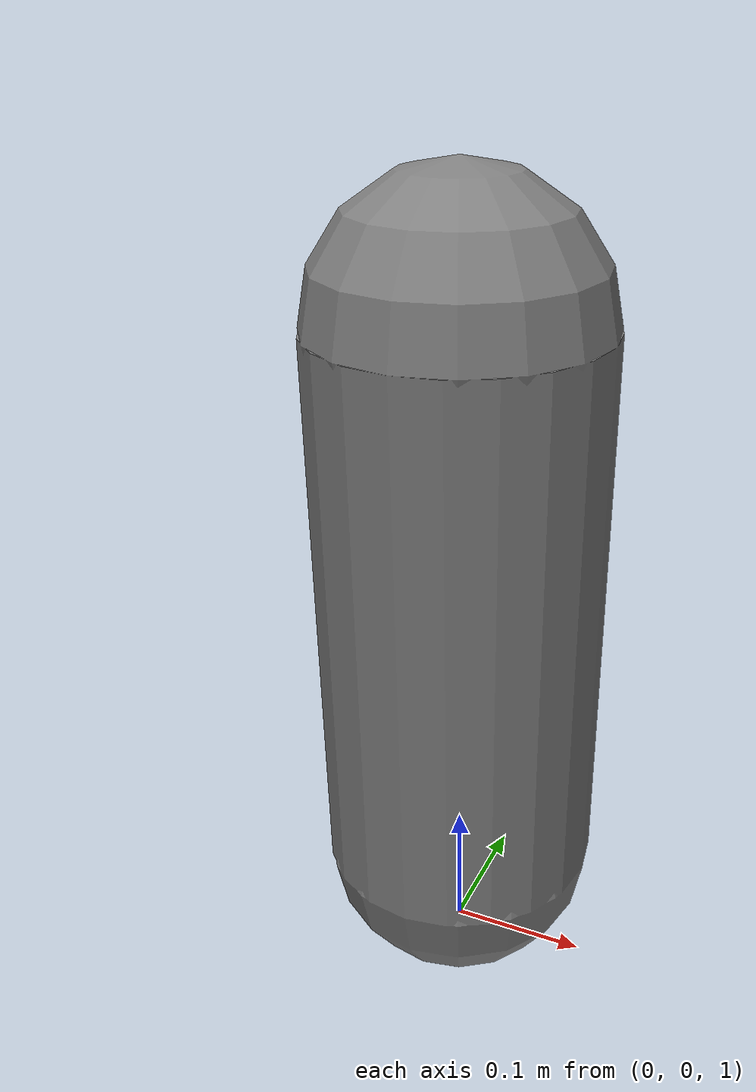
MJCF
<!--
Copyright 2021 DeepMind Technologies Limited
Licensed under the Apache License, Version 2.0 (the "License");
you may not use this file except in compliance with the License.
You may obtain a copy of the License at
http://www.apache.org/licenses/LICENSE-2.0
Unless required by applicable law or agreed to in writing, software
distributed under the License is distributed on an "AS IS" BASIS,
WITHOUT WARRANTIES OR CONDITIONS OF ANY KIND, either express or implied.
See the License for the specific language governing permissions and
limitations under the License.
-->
<mujoco model="Humanoid">
  <option timestep="0.005" iterations="10" ls_iterations="20">
    <flag eulerdamp="disable"/>
  </option>

  <visual>
    <map force="0.1" zfar="30"/>
    <rgba haze="0.15 0.25 0.35 1"/>
    <global offwidth="2560" offheight="1440" elevation="-20" azimuth="120"/>
  </visual>

  <statistic center="0 0 0.7"/>

  <asset>
    <texture type="skybox" builtin="gradient" rgb1=".3 .5 .7" rgb2="0 0 0" width="32" height="512"/>
    <texture name="body" type="cube" builtin="flat" mark="cross" width="128" height="128" rgb1="0.8 0.6 0.4" rgb2="0.8 0.6 0.4" markrgb="1 1 1" random="0.01"/>
    <material name="body" texture="body" texuniform="true" rgba="0.8 0.6 .4 1"/>
    <texture name="grid" type="2d" builtin="checker" width="512" height="512" rgb1=".1 .2 .3" rgb2=".2 .3 .4"/>
    <material name="grid" texture="grid" texrepeat="1 1" texuniform="true" reflectance=".2"/>
  </asset>

  <worldbody>
    <geom name="floor" size="0 0 .05" type="plane" material="grid" condim="3"/>
    <body name="torso" pos="0 0 1.282" >
      <freejoint name="root"/>

      <geom type="capsule" size=".1 .2"/>
    </body>
  </worldbody>

</mujoco>
